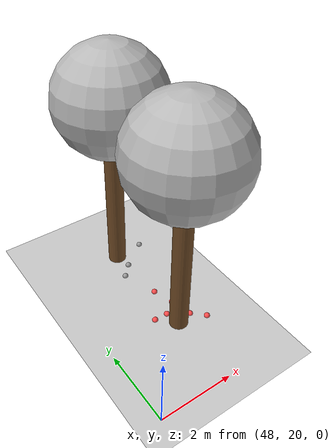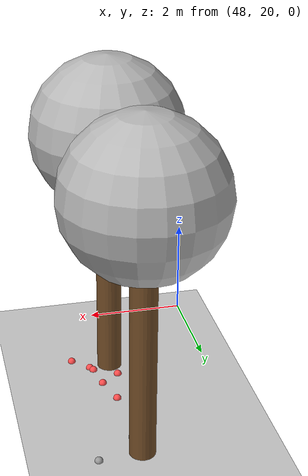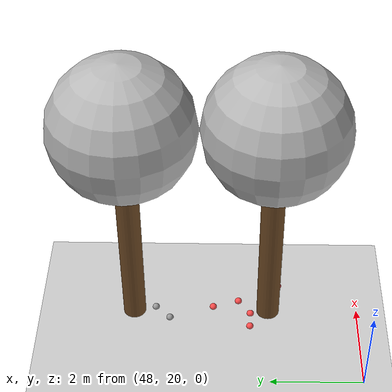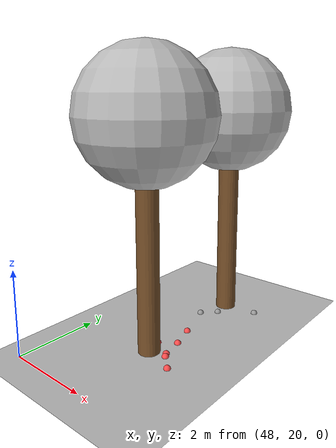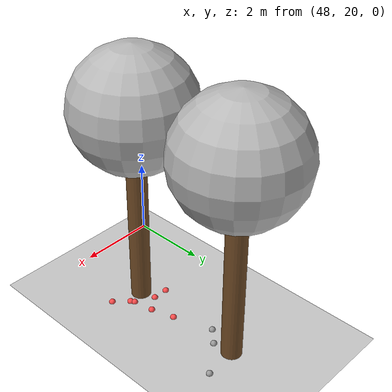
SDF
<sdf version="1.7">
 <world name="default">
  <model name="ground_plane">
   <static>1</static>
   <link name="link">
    <collision name="collision">
     <geometry><plane><normal>0 0 1</normal><size>100 100</size></plane></geometry>
     <surface>
      <contact><collide_bitmask>65535</collide_bitmask></contact>
      <friction><ode><mu>100</mu><mu2>50</mu2></ode></friction>
     </surface>
    </collision>
    <visual name="visual">
     <cast_shadows>0</cast_shadows>
     <geometry><plane><normal>0 0 1</normal><size>100 100</size></plane></geometry>
     <material>
      <script><uri>file://media/materials/scripts/gazebo.material</uri><name>Gazebo/Grey</name></script>
     </material>
    </visual>
   </link>
  </model>
  <model name="tree_simple_38">
   <static>1</static>
   <link name="link">
    <pose>0 0 0.1 0 -0 0</pose>
    <inertial>
     <mass>666</mass>
     <inertia>
      <ixx>0.0861167</ixx>
      <ixy>0</ixy>
      <ixz>0</ixz>
      <iyy>0.0861167</iyy>
      <iyz>0</iyz>
      <izz>0.0861167</izz>
     </inertia>
    </inertial>
    <collision name="collision_trunk">
     <pose>0 0 2 0 -0 0</pose>
     <geometry><cylinder><radius>0.25</radius><length>4</length></cylinder></geometry>
     <surface>
      <contact>
       <poissons_ratio>0.347</poissons_ratio>
       <elastic_modulus>8.8e+09</elastic_modulus>
       <ode><kp>100000</kp><kd>100</kd><max_vel>100</max_vel><min_depth>0.001</min_depth></ode>
      </contact>
      <friction>
       <torsional>
        <coefficient>1</coefficient>
        <use_patch_radius>0</use_patch_radius>
        <surface_radius>0.01</surface_radius>
       </torsional>
      </friction>
     </surface>
    </collision>
    <collision name="collision_treetop">
     <pose>0 0 5.2 0 -0 0</pose>
     <geometry><sphere><radius>1.5</radius></sphere></geometry>
     <surface>
      <contact>
       <poissons_ratio>0.347</poissons_ratio>
       <elastic_modulus>8.8e+09</elastic_modulus>
       <ode><kp>100000</kp><kd>100</kd><max_vel>100</max_vel><min_depth>0.001</min_depth></ode>
      </contact>
      <friction>
       <torsional>
        <coefficient>1</coefficient>
        <use_patch_radius>0</use_patch_radius>
        <surface_radius>0.01</surface_radius>
       </torsional>
      </friction>
     </surface>
    </collision>
    <visual name="trunk">
     <pose>0 0 2 0 -0 0</pose>
     <geometry><cylinder><radius>0.25</radius><length>4</length></cylinder></geometry>
     <material>
      <script>
       <uri>model://tree_simple/scripts</uri>
       <uri>model://tree_simple/materials/textures</uri>
       <name>TreeSimple/Trunk</name>
      </script>
     </material>
    </visual>
    <visual name="treetop">
     <pose>0 0 5.2 0 -0 0</pose>
     <geometry><sphere><radius>1.5</radius></sphere></geometry>
     <material>
      <script>
       <uri>model://tree_simple/scripts</uri>
       <uri>model://tree_simple/materials/textures</uri>
       <name>TreeSimple/Treetop</name>
      </script>
     </material>
    </visual>
   </link>
   <pose>50 25 -0.1 0 -0 0</pose>
  </model>
  <model name="tree_simple_45">
   <static>1</static>
   <link name="link">
    <pose>0 0 0.1 0 -0 0</pose>
    <inertial>
     <mass>666</mass>
     <inertia>
      <ixx>0.0861167</ixx>
      <ixy>0</ixy>
      <ixz>0</ixz>
      <iyy>0.0861167</iyy>
      <iyz>0</iyz>
      <izz>0.0861167</izz>
     </inertia>
    </inertial>
    <collision name="collision_trunk">
     <pose>0 0 2 0 -0 0</pose>
     <geometry><cylinder><radius>0.25</radius><length>4</length></cylinder></geometry>
     <surface>
      <contact>
       <poissons_ratio>0.347</poissons_ratio>
       <elastic_modulus>8.8e+09</elastic_modulus>
       <ode><kp>100000</kp><kd>100</kd><max_vel>100</max_vel><min_depth>0.001</min_depth></ode>
      </contact>
      <friction>
       <torsional>
        <coefficient>1</coefficient>
        <use_patch_radius>0</use_patch_radius>
        <surface_radius>0.01</surface_radius>
       </torsional>
      </friction>
     </surface>
    </collision>
    <collision name="collision_treetop">
     <pose>0 0 5.2 0 -0 0</pose>
     <geometry><sphere><radius>1.5</radius></sphere></geometry>
     <surface>
      <contact>
       <poissons_ratio>0.347</poissons_ratio>
       <elastic_modulus>8.8e+09</elastic_modulus>
       <ode><kp>100000</kp><kd>100</kd><max_vel>100</max_vel><min_depth>0.001</min_depth></ode>
      </contact>
      <friction>
       <torsional>
        <coefficient>1</coefficient>
        <use_patch_radius>0</use_patch_radius>
        <surface_radius>0.01</surface_radius>
       </torsional>
      </friction>
     </surface>
    </collision>
    <visual name="trunk">
     <pose>0 0 2 0 -0 0</pose>
     <geometry><cylinder><radius>0.25</radius><length>4</length></cylinder></geometry>
     <material>
      <script>
       <uri>model://tree_simple/scripts</uri>
       <uri>model://tree_simple/materials/textures</uri>
       <name>TreeSimple/Trunk</name>
      </script>
     </material>
    </visual>
    <visual name="treetop">
     <pose>0 0 5.2 0 -0 0</pose>
     <geometry><sphere><radius>1.5</radius></sphere></geometry>
     <material>
      <script>
       <uri>model://tree_simple/scripts</uri>
       <uri>model://tree_simple/materials/textures</uri>
       <name>TreeSimple/Treetop</name>
      </script>
     </material>
    </visual>
   </link>
   <pose>50 22 -0.1 0 -0 0</pose>
  </model>
  <model name="seed_black_31">
   <link name="link">
    <inertial>
     <mass>1</mass>
     <inertia><ixx>0.1</ixx><ixy>0</ixy><ixz>0</ixz><iyy>0.1</iyy><iyz>0</iyz><izz>0.1</izz></inertia>
    </inertial>
    <visual name="visual">
     <geometry><sphere><radius>0.08</radius></sphere></geometry>
     <material>
      <script><name>Gazebo/Grey</name><uri>file://media/materials/scripts/gazebo.material</uri></script>
      <shader type="pixel"><normal_map>__default__</normal_map></shader>
      <ambient>0 0 0 1</ambient>
      <diffuse>0.7 0.7 0.7 1</diffuse>
      <specular>0.01 0.01 0.01 1</specular>
      <emissive>0 0 0 1</emissive>
     </material>
    </visual>
    <collision name="collision">
     <geometry><sphere><radius>0.0005</radius></sphere></geometry>
     <surface>
      <friction>
       <ode><mu>1</mu><mu2>1</mu2><fdir1>0 0 0</fdir1><slip1>0</slip1><slip2>0</slip2></ode>
       <torsional>
        <coefficient>1</coefficient>
        <patch_radius>0</patch_radius>
        <surface_radius>0</surface_radius>
        <use_patch_radius>1</use_patch_radius>
        <ode><slip>0</slip></ode>
       </torsional>
      </friction>
      <bounce><restitution_coefficient>0</restitution_coefficient><threshold>1e+06</threshold></bounce>
      <contact>
       <collide_without_contact>0</collide_without_contact>
       <collide_without_contact_bitmask>1</collide_without_contact_bitmask>
       <collide_bitmask>1</collide_bitmask>
       <ode>
        <soft_cfm>0</soft_cfm>
        <soft_erp>0.2</soft_erp>
        <kp>1e+13</kp>
        <kd>1</kd>
        <max_vel>0.01</max_vel>
        <min_depth>0</min_depth>
       </ode>
       <bullet>
        <split_impulse>1</split_impulse>
        <split_impulse_penetration_threshold>-0.01</split_impulse_penetration_threshold>
        <soft_cfm>0</soft_cfm>
        <soft_erp>0.2</soft_erp>
        <kp>1e+13</kp>
        <kd>1</kd>
       </bullet>
      </contact>
     </surface>
    </collision>
   </link>
   <static>0</static>
   <pose>49.7658 24.1997 0.0005 0 -0 0</pose>
  </model>
  <model name="seed_black_32">
   <link name="link">
    <inertial>
     <mass>1</mass>
     <inertia><ixx>0.1</ixx><ixy>0</ixy><ixz>0</ixz><iyy>0.1</iyy><iyz>0</iyz><izz>0.1</izz></inertia>
    </inertial>
    <visual name="visual">
     <geometry><sphere><radius>0.08</radius></sphere></geometry>
     <material>
      <script><name>Gazebo/Grey</name><uri>file://media/materials/scripts/gazebo.material</uri></script>
      <shader type="pixel"><normal_map>__default__</normal_map></shader>
      <ambient>0 0 0 1</ambient>
      <diffuse>0.7 0.7 0.7 1</diffuse>
      <specular>0.01 0.01 0.01 1</specular>
      <emissive>0 0 0 1</emissive>
     </material>
    </visual>
    <collision name="collision">
     <geometry><sphere><radius>0.0005</radius></sphere></geometry>
     <surface>
      <friction>
       <ode><mu>1</mu><mu2>1</mu2><fdir1>0 0 0</fdir1><slip1>0</slip1><slip2>0</slip2></ode>
       <torsional>
        <coefficient>1</coefficient>
        <patch_radius>0</patch_radius>
        <surface_radius>0</surface_radius>
        <use_patch_radius>1</use_patch_radius>
        <ode><slip>0</slip></ode>
       </torsional>
      </friction>
      <bounce><restitution_coefficient>0</restitution_coefficient><threshold>1e+06</threshold></bounce>
      <contact>
       <collide_without_contact>0</collide_without_contact>
       <collide_without_contact_bitmask>1</collide_without_contact_bitmask>
       <collide_bitmask>1</collide_bitmask>
       <ode>
        <soft_cfm>0</soft_cfm>
        <soft_erp>0.2</soft_erp>
        <kp>1e+13</kp>
        <kd>1</kd>
        <max_vel>0.01</max_vel>
        <min_depth>0</min_depth>
       </ode>
       <bullet>
        <split_impulse>1</split_impulse>
        <split_impulse_penetration_threshold>-0.01</split_impulse_penetration_threshold>
        <soft_cfm>0</soft_cfm>
        <soft_erp>0.2</soft_erp>
        <kp>1e+13</kp>
        <kd>1</kd>
       </bullet>
      </contact>
     </surface>
    </collision>
   </link>
   <static>0</static>
   <pose>50.079 24.5272 0.0005 0 -0 0</pose>
  </model>
  <model name="seed_black_33">
   <link name="link">
    <inertial>
     <mass>1</mass>
     <inertia><ixx>0.1</ixx><ixy>0</ixy><ixz>0</ixz><iyy>0.1</iyy><iyz>0</iyz><izz>0.1</izz></inertia>
    </inertial>
    <visual name="visual">
     <geometry><sphere><radius>0.08</radius></sphere></geometry>
     <material>
      <script><name>Gazebo/Grey</name><uri>file://media/materials/scripts/gazebo.material</uri></script>
      <shader type="pixel"><normal_map>__default__</normal_map></shader>
      <ambient>0 0 0 1</ambient>
      <diffuse>0.7 0.7 0.7 1</diffuse>
      <specular>0.01 0.01 0.01 1</specular>
      <emissive>0 0 0 1</emissive>
     </material>
    </visual>
    <collision name="collision">
     <geometry><sphere><radius>0.0005</radius></sphere></geometry>
     <surface>
      <friction>
       <ode><mu>1</mu><mu2>1</mu2><fdir1>0 0 0</fdir1><slip1>0</slip1><slip2>0</slip2></ode>
       <torsional>
        <coefficient>1</coefficient>
        <patch_radius>0</patch_radius>
        <surface_radius>0</surface_radius>
        <use_patch_radius>1</use_patch_radius>
        <ode><slip>0</slip></ode>
       </torsional>
      </friction>
      <bounce><restitution_coefficient>0</restitution_coefficient><threshold>1e+06</threshold></bounce>
      <contact>
       <collide_without_contact>0</collide_without_contact>
       <collide_without_contact_bitmask>1</collide_without_contact_bitmask>
       <collide_bitmask>1</collide_bitmask>
       <ode>
        <soft_cfm>0</soft_cfm>
        <soft_erp>0.2</soft_erp>
        <kp>1e+13</kp>
        <kd>1</kd>
        <max_vel>0.01</max_vel>
        <min_depth>0</min_depth>
       </ode>
       <bullet>
        <split_impulse>1</split_impulse>
        <split_impulse_penetration_threshold>-0.01</split_impulse_penetration_threshold>
        <soft_cfm>0</soft_cfm>
        <soft_erp>0.2</soft_erp>
        <kp>1e+13</kp>
        <kd>1</kd>
       </bullet>
      </contact>
     </surface>
    </collision>
   </link>
   <static>0</static>
   <pose>50.837 25.0815 0.0005 0 -0 0</pose>
  </model>
  <model name="seed_red_210">
   <link name="link">
    <inertial>
     <mass>1</mass>
     <inertia><ixx>0.1</ixx><ixy>0</ixy><ixz>0</ixz><iyy>0.1</iyy><iyz>0</iyz><izz>0.1</izz></inertia>
    </inertial>
    <visual name="visual">
     <geometry><sphere><radius>0.08</radius></sphere></geometry>
     <material>
      <script><name>Gazebo/Grey</name><uri>file://media/materials/scripts/gazebo.material</uri></script>
      <shader type="pixel"><normal_map>__default__</normal_map></shader>
      <ambient>1 0.3 0.3 1</ambient>
      <diffuse>0.7 0.7 0.7 1</diffuse>
      <specular>0.01 0.01 0.01 1</specular>
      <emissive>0 0 0 1</emissive>
     </material>
    </visual>
    <collision name="collision">
     <geometry><sphere><radius>0.0005</radius></sphere></geometry>
     <surface>
      <friction>
       <ode><mu>1</mu><mu2>1</mu2><fdir1>0 0 0</fdir1><slip1>0</slip1><slip2>0</slip2></ode>
       <torsional>
        <coefficient>1</coefficient>
        <patch_radius>0</patch_radius>
        <surface_radius>0</surface_radius>
        <use_patch_radius>1</use_patch_radius>
        <ode><slip>0</slip></ode>
       </torsional>
      </friction>
      <bounce><restitution_coefficient>0</restitution_coefficient><threshold>1e+06</threshold></bounce>
      <contact>
       <collide_without_contact>0</collide_without_contact>
       <collide_without_contact_bitmask>1</collide_without_contact_bitmask>
       <collide_bitmask>1</collide_bitmask>
       <ode>
        <soft_cfm>0</soft_cfm>
        <soft_erp>0.2</soft_erp>
        <kp>1e+13</kp>
        <kd>1</kd>
        <max_vel>0.01</max_vel>
        <min_depth>0</min_depth>
       </ode>
       <bullet>
        <split_impulse>1</split_impulse>
        <split_impulse_penetration_threshold>-0.01</split_impulse_penetration_threshold>
        <soft_cfm>0</soft_cfm>
        <soft_erp>0.2</soft_erp>
        <kp>1e+13</kp>
        <kd>1</kd>
       </bullet>
      </contact>
     </surface>
    </collision>
   </link>
   <static>0</static>
   <pose>50.0957 23.2302 0.0005 0 -0 0</pose>
  </model>
  <model name="seed_red_212">
   <link name="link">
    <inertial>
     <mass>1</mass>
     <inertia><ixx>0.1</ixx><ixy>0</ixy><ixz>0</ixz><iyy>0.1</iyy><iyz>0</iyz><izz>0.1</izz></inertia>
    </inertial>
    <visual name="visual">
     <geometry><sphere><radius>0.08</radius></sphere></geometry>
     <material>
      <script><name>Gazebo/Grey</name><uri>file://media/materials/scripts/gazebo.material</uri></script>
      <shader type="pixel"><normal_map>__default__</normal_map></shader>
      <ambient>1 0.3 0.3 1</ambient>
      <diffuse>0.7 0.7 0.7 1</diffuse>
      <specular>0.01 0.01 0.01 1</specular>
      <emissive>0 0 0 1</emissive>
     </material>
    </visual>
    <collision name="collision">
     <geometry><sphere><radius>0.0005</radius></sphere></geometry>
     <surface>
      <friction>
       <ode><mu>1</mu><mu2>1</mu2><fdir1>0 0 0</fdir1><slip1>0</slip1><slip2>0</slip2></ode>
       <torsional>
        <coefficient>1</coefficient>
        <patch_radius>0</patch_radius>
        <surface_radius>0</surface_radius>
        <use_patch_radius>1</use_patch_radius>
        <ode><slip>0</slip></ode>
       </torsional>
      </friction>
      <bounce><restitution_coefficient>0</restitution_coefficient><threshold>1e+06</threshold></bounce>
      <contact>
       <collide_without_contact>0</collide_without_contact>
       <collide_without_contact_bitmask>1</collide_without_contact_bitmask>
       <collide_bitmask>1</collide_bitmask>
       <ode>
        <soft_cfm>0</soft_cfm>
        <soft_erp>0.2</soft_erp>
        <kp>1e+13</kp>
        <kd>1</kd>
        <max_vel>0.01</max_vel>
        <min_depth>0</min_depth>
       </ode>
       <bullet>
        <split_impulse>1</split_impulse>
        <split_impulse_penetration_threshold>-0.01</split_impulse_penetration_threshold>
        <soft_cfm>0</soft_cfm>
        <soft_erp>0.2</soft_erp>
        <kp>1e+13</kp>
        <kd>1</kd>
       </bullet>
      </contact>
     </surface>
    </collision>
   </link>
   <static>0</static>
   <pose>50.427 22.0586 0.0005 0 -0 0</pose>
  </model>
  <model name="seed_red_213">
   <link name="link">
    <inertial>
     <mass>1</mass>
     <inertia><ixx>0.1</ixx><ixy>0</ixy><ixz>0</ixz><iyy>0.1</iyy><iyz>0</iyz><izz>0.1</izz></inertia>
    </inertial>
    <visual name="visual">
     <geometry><sphere><radius>0.08</radius></sphere></geometry>
     <material>
      <script><name>Gazebo/Grey</name><uri>file://media/materials/scripts/gazebo.material</uri></script>
      <shader type="pixel"><normal_map>__default__</normal_map></shader>
      <ambient>1 0.3 0.3 1</ambient>
      <diffuse>0.7 0.7 0.7 1</diffuse>
      <specular>0.01 0.01 0.01 1</specular>
      <emissive>0 0 0 1</emissive>
     </material>
    </visual>
    <collision name="collision">
     <geometry><sphere><radius>0.0005</radius></sphere></geometry>
     <surface>
      <friction>
       <ode><mu>1</mu><mu2>1</mu2><fdir1>0 0 0</fdir1><slip1>0</slip1><slip2>0</slip2></ode>
       <torsional>
        <coefficient>1</coefficient>
        <patch_radius>0</patch_radius>
        <surface_radius>0</surface_radius>
        <use_patch_radius>1</use_patch_radius>
        <ode><slip>0</slip></ode>
       </torsional>
      </friction>
      <bounce><restitution_coefficient>0</restitution_coefficient><threshold>1e+06</threshold></bounce>
      <contact>
       <collide_without_contact>0</collide_without_contact>
       <collide_without_contact_bitmask>1</collide_without_contact_bitmask>
       <collide_bitmask>1</collide_bitmask>
       <ode>
        <soft_cfm>0</soft_cfm>
        <soft_erp>0.2</soft_erp>
        <kp>1e+13</kp>
        <kd>1</kd>
        <max_vel>0.01</max_vel>
        <min_depth>0</min_depth>
       </ode>
       <bullet>
        <split_impulse>1</split_impulse>
        <split_impulse_penetration_threshold>-0.01</split_impulse_penetration_threshold>
        <soft_cfm>0</soft_cfm>
        <soft_erp>0.2</soft_erp>
        <kp>1e+13</kp>
        <kd>1</kd>
       </bullet>
      </contact>
     </surface>
    </collision>
   </link>
   <static>0</static>
   <pose>49.9071 22.3921 0.0005 0 -0 0</pose>
  </model>
  <model name="seed_red_214">
   <link name="link">
    <inertial>
     <mass>1</mass>
     <inertia><ixx>0.1</ixx><ixy>0</ixy><ixz>0</ixz><iyy>0.1</iyy><iyz>0</iyz><izz>0.1</izz></inertia>
    </inertial>
    <visual name="visual">
     <geometry><sphere><radius>0.08</radius></sphere></geometry>
     <material>
      <script><name>Gazebo/Grey</name><uri>file://media/materials/scripts/gazebo.material</uri></script>
      <shader type="pixel"><normal_map>__default__</normal_map></shader>
      <ambient>1 0.3 0.3 1</ambient>
      <diffuse>0.7 0.7 0.7 1</diffuse>
      <specular>0.01 0.01 0.01 1</specular>
      <emissive>0 0 0 1</emissive>
     </material>
    </visual>
    <collision name="collision">
     <geometry><sphere><radius>0.0005</radius></sphere></geometry>
     <surface>
      <friction>
       <ode><mu>1</mu><mu2>1</mu2><fdir1>0 0 0</fdir1><slip1>0</slip1><slip2>0</slip2></ode>
       <torsional>
        <coefficient>1</coefficient>
        <patch_radius>0</patch_radius>
        <surface_radius>0</surface_radius>
        <use_patch_radius>1</use_patch_radius>
        <ode><slip>0</slip></ode>
       </torsional>
      </friction>
      <bounce><restitution_coefficient>0</restitution_coefficient><threshold>1e+06</threshold></bounce>
      <contact>
       <collide_without_contact>0</collide_without_contact>
       <collide_without_contact_bitmask>1</collide_without_contact_bitmask>
       <collide_bitmask>1</collide_bitmask>
       <ode>
        <soft_cfm>0</soft_cfm>
        <soft_erp>0.2</soft_erp>
        <kp>1e+13</kp>
        <kd>1</kd>
        <max_vel>0.01</max_vel>
        <min_depth>0</min_depth>
       </ode>
       <bullet>
        <split_impulse>1</split_impulse>
        <split_impulse_penetration_threshold>-0.01</split_impulse_penetration_threshold>
        <soft_cfm>0</soft_cfm>
        <soft_erp>0.2</soft_erp>
        <kp>1e+13</kp>
        <kd>1</kd>
       </bullet>
      </contact>
     </surface>
    </collision>
   </link>
   <static>0</static>
   <pose>50.2754 22.66 0.0005 0 -0 0</pose>
  </model>
  <model name="seed_red_215">
   <link name="link">
    <inertial>
     <mass>1</mass>
     <inertia><ixx>0.1</ixx><ixy>0</ixy><ixz>0</ixz><iyy>0.1</iyy><iyz>0</iyz><izz>0.1</izz></inertia>
    </inertial>
    <visual name="visual">
     <geometry><sphere><radius>0.08</radius></sphere></geometry>
     <material>
      <script><name>Gazebo/Grey</name><uri>file://media/materials/scripts/gazebo.material</uri></script>
      <shader type="pixel"><normal_map>__default__</normal_map></shader>
      <ambient>1 0.3 0.3 1</ambient>
      <diffuse>0.7 0.7 0.7 1</diffuse>
      <specular>0.01 0.01 0.01 1</specular>
      <emissive>0 0 0 1</emissive>
     </material>
    </visual>
    <collision name="collision">
     <geometry><sphere><radius>0.0005</radius></sphere></geometry>
     <surface>
      <friction>
       <ode><mu>1</mu><mu2>1</mu2><fdir1>0 0 0</fdir1><slip1>0</slip1><slip2>0</slip2></ode>
       <torsional>
        <coefficient>1</coefficient>
        <patch_radius>0</patch_radius>
        <surface_radius>0</surface_radius>
        <use_patch_radius>1</use_patch_radius>
        <ode><slip>0</slip></ode>
       </torsional>
      </friction>
      <bounce><restitution_coefficient>0</restitution_coefficient><threshold>1e+06</threshold></bounce>
      <contact>
       <collide_without_contact>0</collide_without_contact>
       <collide_without_contact_bitmask>1</collide_without_contact_bitmask>
       <collide_bitmask>1</collide_bitmask>
       <ode>
        <soft_cfm>0</soft_cfm>
        <soft_erp>0.2</soft_erp>
        <kp>1e+13</kp>
        <kd>1</kd>
        <max_vel>0.01</max_vel>
        <min_depth>0</min_depth>
       </ode>
       <bullet>
        <split_impulse>1</split_impulse>
        <split_impulse_penetration_threshold>-0.01</split_impulse_penetration_threshold>
        <soft_cfm>0</soft_cfm>
        <soft_erp>0.2</soft_erp>
        <kp>1e+13</kp>
        <kd>1</kd>
       </bullet>
      </contact>
     </surface>
    </collision>
   </link>
   <static>0</static>
   <pose>50.7547 21.7458 0.0005 0 -0 0</pose>
  </model>
  <model name="seed_red_217">
   <link name="link">
    <inertial>
     <mass>1</mass>
     <inertia><ixx>0.1</ixx><ixy>0</ixy><ixz>0</ixz><iyy>0.1</iyy><iyz>0</iyz><izz>0.1</izz></inertia>
    </inertial>
    <visual name="visual">
     <geometry><sphere><radius>0.08</radius></sphere></geometry>
     <material>
      <script><name>Gazebo/Grey</name><uri>file://media/materials/scripts/gazebo.material</uri></script>
      <shader type="pixel"><normal_map>__default__</normal_map></shader>
      <ambient>1 0.3 0.3 1</ambient>
      <diffuse>0.7 0.7 0.7 1</diffuse>
      <specular>0.01 0.01 0.01 1</specular>
      <emissive>0 0 0 1</emissive>
     </material>
    </visual>
    <collision name="collision">
     <geometry><sphere><radius>0.0005</radius></sphere></geometry>
     <surface>
      <friction>
       <ode><mu>1</mu><mu2>1</mu2><fdir1>0 0 0</fdir1><slip1>0</slip1><slip2>0</slip2></ode>
       <torsional>
        <coefficient>1</coefficient>
        <patch_radius>0</patch_radius>
        <surface_radius>0</surface_radius>
        <use_patch_radius>1</use_patch_radius>
        <ode><slip>0</slip></ode>
       </torsional>
      </friction>
      <bounce><restitution_coefficient>0</restitution_coefficient><threshold>1e+06</threshold></bounce>
      <contact>
       <collide_without_contact>0</collide_without_contact>
       <collide_without_contact_bitmask>1</collide_without_contact_bitmask>
       <collide_bitmask>1</collide_bitmask>
       <ode>
        <soft_cfm>0</soft_cfm>
        <soft_erp>0.2</soft_erp>
        <kp>1e+13</kp>
        <kd>1</kd>
        <max_vel>0.01</max_vel>
        <min_depth>0</min_depth>
       </ode>
       <bullet>
        <split_impulse>1</split_impulse>
        <split_impulse_penetration_threshold>-0.01</split_impulse_penetration_threshold>
        <soft_cfm>0</soft_cfm>
        <soft_erp>0.2</soft_erp>
        <kp>1e+13</kp>
        <kd>1</kd>
       </bullet>
      </contact>
     </surface>
    </collision>
   </link>
   <static>0</static>
   <pose>49.5345 22.4045 0.0005 0 -0 0</pose>
  </model>
  <model name="seed_red_218">
   <link name="link">
    <inertial>
     <mass>1</mass>
     <inertia><ixx>0.1</ixx><ixy>0</ixy><ixz>0</ixz><iyy>0.1</iyy><iyz>0</iyz><izz>0.1</izz></inertia>
    </inertial>
    <visual name="visual">
     <geometry><sphere><radius>0.08</radius></sphere></geometry>
     <material>
      <script><name>Gazebo/Grey</name><uri>file://media/materials/scripts/gazebo.material</uri></script>
      <shader type="pixel"><normal_map>__default__</normal_map></shader>
      <ambient>1 0.3 0.3 1</ambient>
      <diffuse>0.7 0.7 0.7 1</diffuse>
      <specular>0.01 0.01 0.01 1</specular>
      <emissive>0 0 0 1</emissive>
     </material>
    </visual>
    <collision name="collision">
     <geometry><sphere><radius>0.0005</radius></sphere></geometry>
     <surface>
      <friction>
       <ode><mu>1</mu><mu2>1</mu2><fdir1>0 0 0</fdir1><slip1>0</slip1><slip2>0</slip2></ode>
       <torsional>
        <coefficient>1</coefficient>
        <patch_radius>0</patch_radius>
        <surface_radius>0</surface_radius>
        <use_patch_radius>1</use_patch_radius>
        <ode><slip>0</slip></ode>
       </torsional>
      </friction>
      <bounce><restitution_coefficient>0</restitution_coefficient><threshold>1e+06</threshold></bounce>
      <contact>
       <collide_without_contact>0</collide_without_contact>
       <collide_without_contact_bitmask>1</collide_without_contact_bitmask>
       <collide_bitmask>1</collide_bitmask>
       <ode>
        <soft_cfm>0</soft_cfm>
        <soft_erp>0.2</soft_erp>
        <kp>1e+13</kp>
        <kd>1</kd>
        <max_vel>0.01</max_vel>
        <min_depth>0</min_depth>
       </ode>
       <bullet>
        <split_impulse>1</split_impulse>
        <split_impulse_penetration_threshold>-0.01</split_impulse_penetration_threshold>
        <soft_cfm>0</soft_cfm>
        <soft_erp>0.2</soft_erp>
        <kp>1e+13</kp>
        <kd>1</kd>
       </bullet>
      </contact>
     </surface>
    </collision>
   </link>
   <static>0</static>
   <pose>50.3709 22.1509 0.0005 0 -0 0</pose>
  </model>
 </world>
</sdf>
